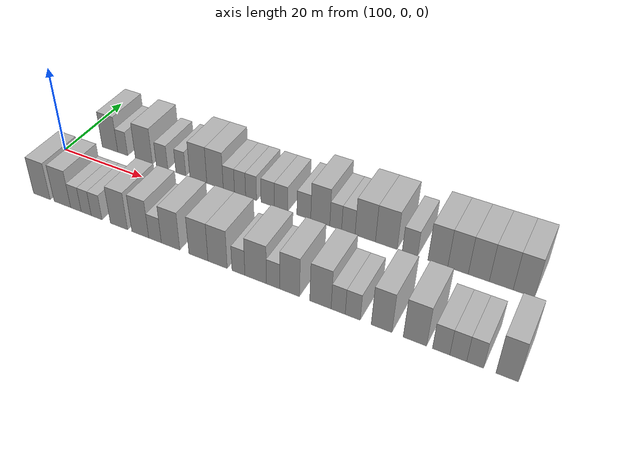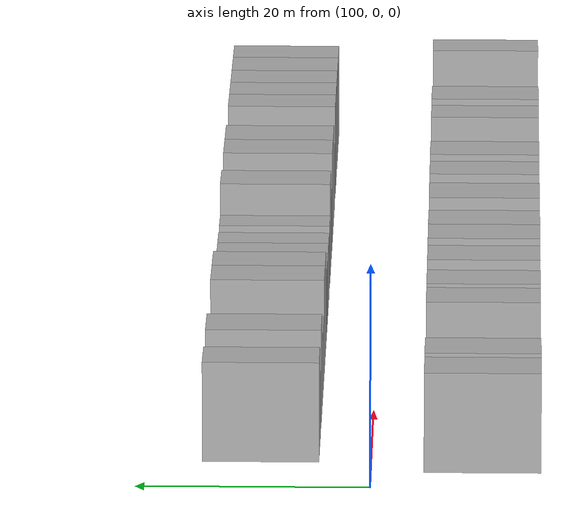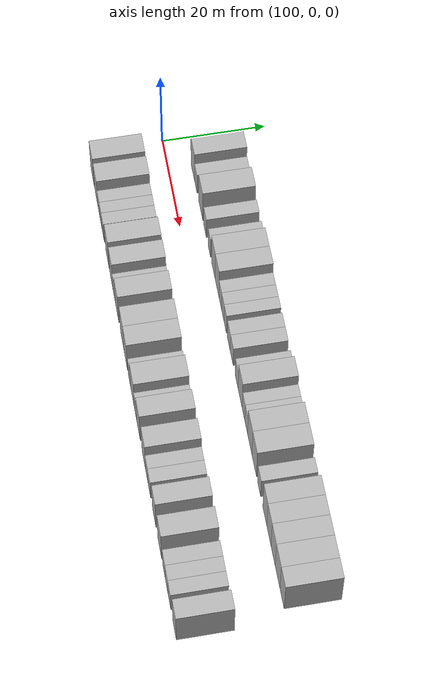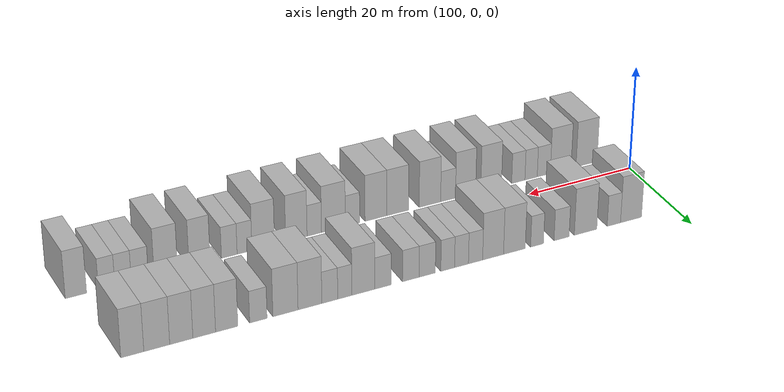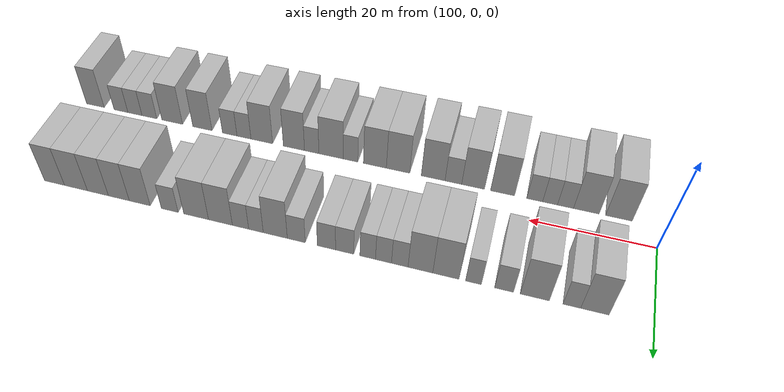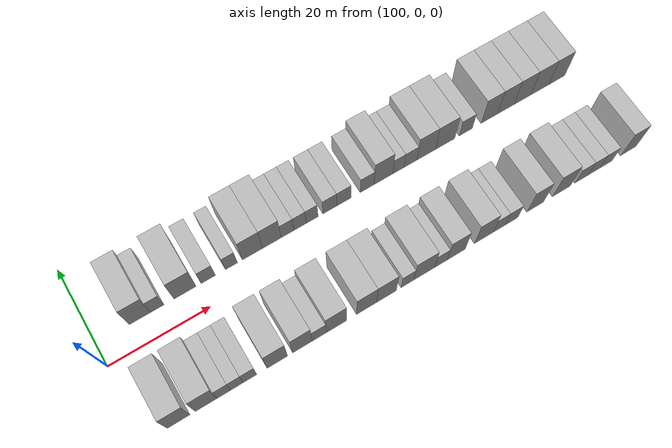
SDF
<sdf version="1.6">
 <world name="default">
  <model name="building_24">
   <static>1</static>
   <pose>108.4882 9.5000 0 0.000000 0.000000 1.570796</pose>
   <link name="link">
    <pose>0 0 4.50 0 0 0</pose>
    <collision name="collision"><geometry><box><size>10.0000 4.1000 9.0000</size></box></geometry></collision>
    <visual name="visual">
     <cast_shadows>0</cast_shadows>
     <geometry><box><size>10.0000 4.1000 9.0000</size></box></geometry>
     <material>
      <script>
       <uri>model://HANNAS_wall/materials/scripts</uri>
       <uri>model://HANNAS_wall/materials/textures</uri>
       <name>vrc/HANNAS_wall</name>
      </script>
     </material>
    </visual>
   </link>
  </model>
  <model name="building_25">
   <static>1</static>
   <pose>111.8313 9.5000 0 0.000000 0.000000 1.570796</pose>
   <link name="link">
    <pose>0 0 3.00 0 0 0</pose>
    <collision name="collision"><geometry><box><size>10.0000 2.5863 6.0000</size></box></geometry></collision>
    <visual name="visual">
     <cast_shadows>0</cast_shadows>
     <geometry><box><size>10.0000 2.5863 6.0000</size></box></geometry>
     <material>
      <script>
       <uri>model://HANNAS_wall/materials/scripts</uri>
       <uri>model://HANNAS_wall/materials/textures</uri>
       <name>vrc/HANNAS_wall</name>
      </script>
     </material>
    </visual>
   </link>
  </model>
  <model name="building_26">
   <static>1</static>
   <pose>117.2905 9.5000 0 0.000000 0.000000 1.570796</pose>
   <link name="link">
    <pose>0 0 4.50 0 0 0</pose>
    <collision name="collision"><geometry><box><size>10.0000 4.3321 9.0000</size></box></geometry></collision>
    <visual name="visual">
     <cast_shadows>0</cast_shadows>
     <geometry><box><size>10.0000 4.3321 9.0000</size></box></geometry>
     <material>
      <script>
       <uri>model://HANNAS_wall/materials/scripts</uri>
       <uri>model://HANNAS_wall/materials/textures</uri>
       <name>vrc/HANNAS_wall</name>
      </script>
     </material>
    </visual>
   </link>
  </model>
  <model name="building_27">
   <static>1</static>
   <pose>121.8870 9.5000 0 0.000000 0.000000 1.570796</pose>
   <link name="link">
    <pose>0 0 3.00 0 0 0</pose>
    <collision name="collision"><geometry><box><size>10.0000 2.8608 6.0000</size></box></geometry></collision>
    <visual name="visual">
     <cast_shadows>0</cast_shadows>
     <geometry><box><size>10.0000 2.8608 6.0000</size></box></geometry>
     <material>
      <script>
       <uri>model://HANNAS_wall/materials/scripts</uri>
       <uri>model://HANNAS_wall/materials/textures</uri>
       <name>vrc/HANNAS_wall</name>
      </script>
     </material>
    </visual>
   </link>
  </model>
  <model name="building_28">
   <static>1</static>
   <pose>126.5355 9.5000 0 0.000000 0.000000 1.570796</pose>
   <link name="link">
    <pose>0 0 3.00 0 0 0</pose>
    <collision name="collision"><geometry><box><size>10.0000 2.4363 6.0000</size></box></geometry></collision>
    <visual name="visual">
     <cast_shadows>0</cast_shadows>
     <geometry><box><size>10.0000 2.4363 6.0000</size></box></geometry>
     <material>
      <script>
       <uri>model://HANNAS_wall/materials/scripts</uri>
       <uri>model://HANNAS_wall/materials/textures</uri>
       <name>vrc/HANNAS_wall</name>
      </script>
     </material>
    </visual>
   </link>
  </model>
  <model name="building_29">
   <static>1</static>
   <pose>130.7886 9.5000 0 0.000000 0.000000 1.570796</pose>
   <link name="link">
    <pose>0 0 4.50 0 0 0</pose>
    <collision name="collision"><geometry><box><size>10.0000 4.0701 9.0000</size></box></geometry></collision>
    <visual name="visual">
     <cast_shadows>0</cast_shadows>
     <geometry><box><size>10.0000 4.0701 9.0000</size></box></geometry>
     <material>
      <script>
       <uri>model://HANNAS_wall/materials/scripts</uri>
       <uri>model://HANNAS_wall/materials/textures</uri>
       <name>vrc/HANNAS_wall</name>
      </script>
     </material>
    </visual>
   </link>
  </model>
  <model name="building_30">
   <static>1</static>
   <pose>134.7658 9.5000 0 0.000000 0.000000 1.570796</pose>
   <link name="link">
    <pose>0 0 4.50 0 0 0</pose>
    <collision name="collision"><geometry><box><size>10.0000 3.8842 9.0000</size></box></geometry></collision>
    <visual name="visual">
     <cast_shadows>0</cast_shadows>
     <geometry><box><size>10.0000 3.8842 9.0000</size></box></geometry>
     <material>
      <script>
       <uri>model://HANNAS_wall/materials/scripts</uri>
       <uri>model://HANNAS_wall/materials/textures</uri>
       <name>vrc/HANNAS_wall</name>
      </script>
     </material>
    </visual>
   </link>
  </model>
  <model name="building_31">
   <static>1</static>
   <pose>138.0191 9.5000 0 0.000000 0.000000 1.570796</pose>
   <link name="link">
    <pose>0 0 3.00 0 0 0</pose>
    <collision name="collision"><geometry><box><size>10.0000 2.6223 6.0000</size></box></geometry></collision>
    <visual name="visual">
     <cast_shadows>0</cast_shadows>
     <geometry><box><size>10.0000 2.6223 6.0000</size></box></geometry>
     <material>
      <script>
       <uri>model://HANNAS_wall/materials/scripts</uri>
       <uri>model://HANNAS_wall/materials/textures</uri>
       <name>vrc/HANNAS_wall</name>
      </script>
     </material>
    </visual>
   </link>
  </model>
  <model name="building_32">
   <static>1</static>
   <pose>140.6083 9.5000 0 0.000000 0.000000 1.570796</pose>
   <link name="link">
    <pose>0 0 3.00 0 0 0</pose>
    <collision name="collision"><geometry><box><size>10.0000 2.5561 6.0000</size></box></geometry></collision>
    <visual name="visual">
     <cast_shadows>0</cast_shadows>
     <geometry><box><size>10.0000 2.5561 6.0000</size></box></geometry>
     <material>
      <script>
       <uri>model://HANNAS_wall/materials/scripts</uri>
       <uri>model://HANNAS_wall/materials/textures</uri>
       <name>vrc/HANNAS_wall</name>
      </script>
     </material>
    </visual>
   </link>
  </model>
  <model name="building_33">
   <static>1</static>
   <pose>143.1384 9.5000 0 0.000000 0.000000 1.570796</pose>
   <link name="link">
    <pose>0 0 3.00 0 0 0</pose>
    <collision name="collision"><geometry><box><size>10.0000 2.5040 6.0000</size></box></geometry></collision>
    <visual name="visual">
     <cast_shadows>0</cast_shadows>
     <geometry><box><size>10.0000 2.5040 6.0000</size></box></geometry>
     <material>
      <script>
       <uri>model://HANNAS_wall/materials/scripts</uri>
       <uri>model://HANNAS_wall/materials/textures</uri>
       <name>vrc/HANNAS_wall</name>
      </script>
     </material>
    </visual>
   </link>
  </model>
  <model name="building_34">
   <static>1</static>
   <pose>146.8678 9.5000 0 0.000000 0.000000 1.570796</pose>
   <link name="link">
    <pose>0 0 3.00 0 0 0</pose>
    <collision name="collision"><geometry><box><size>10.0000 2.9549 6.0000</size></box></geometry></collision>
    <visual name="visual">
     <cast_shadows>0</cast_shadows>
     <geometry><box><size>10.0000 2.9549 6.0000</size></box></geometry>
     <material>
      <script>
       <uri>model://HANNAS_wall/materials/scripts</uri>
       <uri>model://HANNAS_wall/materials/textures</uri>
       <name>vrc/HANNAS_wall</name>
      </script>
     </material>
    </visual>
   </link>
  </model>
  <model name="building_35">
   <static>1</static>
   <pose>149.8399 9.5000 0 0.000000 0.000000 1.570796</pose>
   <link name="link">
    <pose>0 0 3.00 0 0 0</pose>
    <collision name="collision"><geometry><box><size>10.0000 2.9893 6.0000</size></box></geometry></collision>
    <visual name="visual">
     <cast_shadows>0</cast_shadows>
     <geometry><box><size>10.0000 2.9893 6.0000</size></box></geometry>
     <material>
      <script>
       <uri>model://HANNAS_wall/materials/scripts</uri>
       <uri>model://HANNAS_wall/materials/textures</uri>
       <name>vrc/HANNAS_wall</name>
      </script>
     </material>
    </visual>
   </link>
  </model>
  <model name="building_36">
   <static>1</static>
   <pose>154.8309 9.5000 0 0.000000 0.000000 1.570796</pose>
   <link name="link">
    <pose>0 0 3.00 0 0 0</pose>
    <collision name="collision"><geometry><box><size>10.0000 2.9926 6.0000</size></box></geometry></collision>
    <visual name="visual">
     <cast_shadows>0</cast_shadows>
     <geometry><box><size>10.0000 2.9926 6.0000</size></box></geometry>
     <material>
      <script>
       <uri>model://HANNAS_wall/materials/scripts</uri>
       <uri>model://HANNAS_wall/materials/textures</uri>
       <name>vrc/HANNAS_wall</name>
      </script>
     </material>
    </visual>
   </link>
  </model>
  <model name="building_37">
   <static>1</static>
   <pose>158.3484 9.5000 0 0.000000 0.000000 1.570796</pose>
   <link name="link">
    <pose>0 0 4.50 0 0 0</pose>
    <collision name="collision"><geometry><box><size>10.0000 4.0424 9.0000</size></box></geometry></collision>
    <visual name="visual">
     <cast_shadows>0</cast_shadows>
     <geometry><box><size>10.0000 4.0424 9.0000</size></box></geometry>
     <material>
      <script>
       <uri>model://HANNAS_wall/materials/scripts</uri>
       <uri>model://HANNAS_wall/materials/textures</uri>
       <name>vrc/HANNAS_wall</name>
      </script>
     </material>
    </visual>
   </link>
  </model>
  <model name="building_38">
   <static>1</static>
   <pose>161.6100 9.5000 0 0.000000 0.000000 1.570796</pose>
   <link name="link">
    <pose>0 0 3.00 0 0 0</pose>
    <collision name="collision"><geometry><box><size>10.0000 2.4809 6.0000</size></box></geometry></collision>
    <visual name="visual">
     <cast_shadows>0</cast_shadows>
     <geometry><box><size>10.0000 2.4809 6.0000</size></box></geometry>
     <material>
      <script>
       <uri>model://HANNAS_wall/materials/scripts</uri>
       <uri>model://HANNAS_wall/materials/textures</uri>
       <name>vrc/HANNAS_wall</name>
      </script>
     </material>
    </visual>
   </link>
  </model>
  <model name="building_39">
   <static>1</static>
   <pose>164.2413 9.5000 0 0.000000 0.000000 1.570796</pose>
   <link name="link">
    <pose>0 0 3.00 0 0 0</pose>
    <collision name="collision"><geometry><box><size>10.0000 2.7817 6.0000</size></box></geometry></collision>
    <visual name="visual">
     <cast_shadows>0</cast_shadows>
     <geometry><box><size>10.0000 2.7817 6.0000</size></box></geometry>
     <material>
      <script>
       <uri>model://HANNAS_wall/materials/scripts</uri>
       <uri>model://HANNAS_wall/materials/textures</uri>
       <name>vrc/HANNAS_wall</name>
      </script>
     </material>
    </visual>
   </link>
  </model>
  <model name="building_40">
   <static>1</static>
   <pose>167.7041 9.5000 0 0.000000 0.000000 1.570796</pose>
   <link name="link">
    <pose>0 0 4.50 0 0 0</pose>
    <collision name="collision"><geometry><box><size>10.0000 4.1439 9.0000</size></box></geometry></collision>
    <visual name="visual">
     <cast_shadows>0</cast_shadows>
     <geometry><box><size>10.0000 4.1439 9.0000</size></box></geometry>
     <material>
      <script>
       <uri>model://HANNAS_wall/materials/scripts</uri>
       <uri>model://HANNAS_wall/materials/textures</uri>
       <name>vrc/HANNAS_wall</name>
      </script>
     </material>
    </visual>
   </link>
  </model>
  <model name="building_41">
   <static>1</static>
   <pose>171.9448 9.5000 0 0.000000 0.000000 1.570796</pose>
   <link name="link">
    <pose>0 0 4.50 0 0 0</pose>
    <collision name="collision"><geometry><box><size>10.0000 4.3375 9.0000</size></box></geometry></collision>
    <visual name="visual">
     <cast_shadows>0</cast_shadows>
     <geometry><box><size>10.0000 4.3375 9.0000</size></box></geometry>
     <material>
      <script>
       <uri>model://HANNAS_wall/materials/scripts</uri>
       <uri>model://HANNAS_wall/materials/textures</uri>
       <name>vrc/HANNAS_wall</name>
      </script>
     </material>
    </visual>
   </link>
  </model>
  <model name="building_42">
   <static>1</static>
   <pose>176.6017 9.5000 0 0.000000 0.000000 1.570796</pose>
   <link name="link">
    <pose>0 0 3.00 0 0 0</pose>
    <collision name="collision"><geometry><box><size>10.0000 2.9762 6.0000</size></box></geometry></collision>
    <visual name="visual">
     <cast_shadows>0</cast_shadows>
     <geometry><box><size>10.0000 2.9762 6.0000</size></box></geometry>
     <material>
      <script>
       <uri>model://HANNAS_wall/materials/scripts</uri>
       <uri>model://HANNAS_wall/materials/textures</uri>
       <name>vrc/HANNAS_wall</name>
      </script>
     </material>
    </visual>
   </link>
  </model>
  <model name="building_43">
   <static>1</static>
   <pose>181.9762 9.5000 0 0.000000 0.000000 1.570796</pose>
   <link name="link">
    <pose>0 0 4.50 0 0 0</pose>
    <collision name="collision"><geometry><box><size>10.0000 3.7729 9.0000</size></box></geometry></collision>
    <visual name="visual">
     <cast_shadows>0</cast_shadows>
     <geometry><box><size>10.0000 3.7729 9.0000</size></box></geometry>
     <material>
      <script>
       <uri>model://HANNAS_wall/materials/scripts</uri>
       <uri>model://HANNAS_wall/materials/textures</uri>
       <name>vrc/HANNAS_wall</name>
      </script>
     </material>
    </visual>
   </link>
  </model>
  <model name="building_44">
   <static>1</static>
   <pose>185.7670 9.5000 0 0.000000 0.000000 1.570796</pose>
   <link name="link">
    <pose>0 0 4.50 0 0 0</pose>
    <collision name="collision"><geometry><box><size>10.0000 3.8088 9.0000</size></box></geometry></collision>
    <visual name="visual">
     <cast_shadows>0</cast_shadows>
     <geometry><box><size>10.0000 3.8088 9.0000</size></box></geometry>
     <material>
      <script>
       <uri>model://HANNAS_wall/materials/scripts</uri>
       <uri>model://HANNAS_wall/materials/textures</uri>
       <name>vrc/HANNAS_wall</name>
      </script>
     </material>
    </visual>
   </link>
  </model>
  <model name="building_45">
   <static>1</static>
   <pose>189.6012 9.5000 0 0.000000 0.000000 1.570796</pose>
   <link name="link">
    <pose>0 0 4.50 0 0 0</pose>
    <collision name="collision"><geometry><box><size>10.0000 3.8596 9.0000</size></box></geometry></collision>
    <visual name="visual">
     <cast_shadows>0</cast_shadows>
     <geometry><box><size>10.0000 3.8596 9.0000</size></box></geometry>
     <material>
      <script>
       <uri>model://HANNAS_wall/materials/scripts</uri>
       <uri>model://HANNAS_wall/materials/textures</uri>
       <name>vrc/HANNAS_wall</name>
      </script>
     </material>
    </visual>
   </link>
  </model>
  <model name="building_46">
   <static>1</static>
   <pose>193.6714 9.5000 0 0.000000 0.000000 1.570796</pose>
   <link name="link">
    <pose>0 0 4.50 0 0 0</pose>
    <collision name="collision"><geometry><box><size>10.0000 4.2807 9.0000</size></box></geometry></collision>
    <visual name="visual">
     <cast_shadows>0</cast_shadows>
     <geometry><box><size>10.0000 4.2807 9.0000</size></box></geometry>
     <material>
      <script>
       <uri>model://HANNAS_wall/materials/scripts</uri>
       <uri>model://HANNAS_wall/materials/textures</uri>
       <name>vrc/HANNAS_wall</name>
      </script>
     </material>
    </visual>
   </link>
  </model>
  <model name="building_47">
   <static>1</static>
   <pose>197.6972 9.5000 0 0.000000 0.000000 1.570796</pose>
   <link name="link">
    <pose>0 0 4.50 0 0 0</pose>
    <collision name="collision"><geometry><box><size>10.0000 3.7709 9.0000</size></box></geometry></collision>
    <visual name="visual">
     <cast_shadows>0</cast_shadows>
     <geometry><box><size>10.0000 3.7709 9.0000</size></box></geometry>
     <material>
      <script>
       <uri>model://HANNAS_wall/materials/scripts</uri>
       <uri>model://HANNAS_wall/materials/textures</uri>
       <name>vrc/HANNAS_wall</name>
      </script>
     </material>
    </visual>
   </link>
  </model>
  <model name="building_73">
   <static>1</static>
   <pose>106.0979 -9.5000 0 0.000000 0.000000 1.570796</pose>
   <link name="link">
    <pose>0 0 4.50 0 0 0</pose>
    <collision name="collision"><geometry><box><size>10.0000 4.2336 9.0000</size></box></geometry></collision>
    <visual name="visual">
     <cast_shadows>0</cast_shadows>
     <geometry><box><size>10.0000 4.2336 9.0000</size></box></geometry>
     <material>
      <script>
       <uri>model://HANNAS_wall/materials/scripts</uri>
       <uri>model://HANNAS_wall/materials/textures</uri>
       <name>vrc/HANNAS_wall</name>
      </script>
     </material>
    </visual>
   </link>
  </model>
  <model name="building_74">
   <static>1</static>
   <pose>111.2817 -9.5000 0 0.000000 0.000000 1.570796</pose>
   <link name="link">
    <pose>0 0 4.50 0 0 0</pose>
    <collision name="collision"><geometry><box><size>10.0000 4.1341 9.0000</size></box></geometry></collision>
    <visual name="visual">
     <cast_shadows>0</cast_shadows>
     <geometry><box><size>10.0000 4.1341 9.0000</size></box></geometry>
     <material>
      <script>
       <uri>model://HANNAS_wall/materials/scripts</uri>
       <uri>model://HANNAS_wall/materials/textures</uri>
       <name>vrc/HANNAS_wall</name>
      </script>
     </material>
    </visual>
   </link>
  </model>
  <model name="building_75">
   <static>1</static>
   <pose>114.6506 -9.5000 0 0.000000 0.000000 1.570796</pose>
   <link name="link">
    <pose>0 0 3.00 0 0 0</pose>
    <collision name="collision"><geometry><box><size>10.0000 2.6037 6.0000</size></box></geometry></collision>
    <visual name="visual">
     <cast_shadows>0</cast_shadows>
     <geometry><box><size>10.0000 2.6037 6.0000</size></box></geometry>
     <material>
      <script>
       <uri>model://HANNAS_wall/materials/scripts</uri>
       <uri>model://HANNAS_wall/materials/textures</uri>
       <name>vrc/HANNAS_wall</name>
      </script>
     </material>
    </visual>
   </link>
  </model>
  <model name="building_76">
   <static>1</static>
   <pose>117.1656 -9.5000 0 0.000000 0.000000 1.570796</pose>
   <link name="link">
    <pose>0 0 3.00 0 0 0</pose>
    <collision name="collision"><geometry><box><size>10.0000 2.4264 6.0000</size></box></geometry></collision>
    <visual name="visual">
     <cast_shadows>0</cast_shadows>
     <geometry><box><size>10.0000 2.4264 6.0000</size></box></geometry>
     <material>
      <script>
       <uri>model://HANNAS_wall/materials/scripts</uri>
       <uri>model://HANNAS_wall/materials/textures</uri>
       <name>vrc/HANNAS_wall</name>
      </script>
     </material>
    </visual>
   </link>
  </model>
  <model name="building_77">
   <static>1</static>
   <pose>119.6805 -9.5000 0 0.000000 0.000000 1.570796</pose>
   <link name="link">
    <pose>0 0 3.00 0 0 0</pose>
    <collision name="collision"><geometry><box><size>10.0000 2.6033 6.0000</size></box></geometry></collision>
    <visual name="visual">
     <cast_shadows>0</cast_shadows>
     <geometry><box><size>10.0000 2.6033 6.0000</size></box></geometry>
     <material>
      <script>
       <uri>model://HANNAS_wall/materials/scripts</uri>
       <uri>model://HANNAS_wall/materials/textures</uri>
       <name>vrc/HANNAS_wall</name>
      </script>
     </material>
    </visual>
   </link>
  </model>
  <model name="building_78">
   <static>1</static>
   <pose>124.9963 -9.5000 0 0.000000 0.000000 1.570796</pose>
   <link name="link">
    <pose>0 0 4.50 0 0 0</pose>
    <collision name="collision"><geometry><box><size>10.0000 4.0285 9.0000</size></box></geometry></collision>
    <visual name="visual">
     <cast_shadows>0</cast_shadows>
     <geometry><box><size>10.0000 4.0285 9.0000</size></box></geometry>
     <material>
      <script>
       <uri>model://HANNAS_wall/materials/scripts</uri>
       <uri>model://HANNAS_wall/materials/textures</uri>
       <name>vrc/HANNAS_wall</name>
      </script>
     </material>
    </visual>
   </link>
  </model>
  <model name="building_79">
   <static>1</static>
   <pose>129.9470 -9.5000 0 0.000000 0.000000 1.570796</pose>
   <link name="link">
    <pose>0 0 4.50 0 0 0</pose>
    <collision name="collision"><geometry><box><size>10.0000 3.8728 9.0000</size></box></geometry></collision>
    <visual name="visual">
     <cast_shadows>0</cast_shadows>
     <geometry><box><size>10.0000 3.8728 9.0000</size></box></geometry>
     <material>
      <script>
       <uri>model://HANNAS_wall/materials/scripts</uri>
       <uri>model://HANNAS_wall/materials/textures</uri>
       <name>vrc/HANNAS_wall</name>
      </script>
     </material>
    </visual>
   </link>
  </model>
  <model name="building_80">
   <static>1</static>
   <pose>133.3084 -9.5000 0 0.000000 0.000000 1.570796</pose>
   <link name="link">
    <pose>0 0 3.00 0 0 0</pose>
    <collision name="collision"><geometry><box><size>10.0000 2.8500 6.0000</size></box></geometry></collision>
    <visual name="visual">
     <cast_shadows>0</cast_shadows>
     <geometry><box><size>10.0000 2.8500 6.0000</size></box></geometry>
     <material>
      <script>
       <uri>model://HANNAS_wall/materials/scripts</uri>
       <uri>model://HANNAS_wall/materials/textures</uri>
       <name>vrc/HANNAS_wall</name>
      </script>
     </material>
    </visual>
   </link>
  </model>
  <model name="building_81">
   <static>1</static>
   <pose>136.7804 -9.5000 0 0.000000 0.000000 1.570796</pose>
   <link name="link">
    <pose>0 0 4.50 0 0 0</pose>
    <collision name="collision"><geometry><box><size>10.0000 4.0941 9.0000</size></box></geometry></collision>
    <visual name="visual">
     <cast_shadows>0</cast_shadows>
     <geometry><box><size>10.0000 4.0941 9.0000</size></box></geometry>
     <material>
      <script>
       <uri>model://HANNAS_wall/materials/scripts</uri>
       <uri>model://HANNAS_wall/materials/textures</uri>
       <name>vrc/HANNAS_wall</name>
      </script>
     </material>
    </visual>
   </link>
  </model>
  <model name="building_82">
   <static>1</static>
   <pose>142.8834 -9.5000 0 0.000000 0.000000 1.570796</pose>
   <link name="link">
    <pose>0 0 4.50 0 0 0</pose>
    <collision name="collision"><geometry><box><size>10.0000 4.1120 9.0000</size></box></geometry></collision>
    <visual name="visual">
     <cast_shadows>0</cast_shadows>
     <geometry><box><size>10.0000 4.1120 9.0000</size></box></geometry>
     <material>
      <script>
       <uri>model://HANNAS_wall/materials/scripts</uri>
       <uri>model://HANNAS_wall/materials/textures</uri>
       <name>vrc/HANNAS_wall</name>
      </script>
     </material>
    </visual>
   </link>
  </model>
  <model name="building_83">
   <static>1</static>
   <pose>146.9704 -9.5000 0 0.000000 0.000000 1.570796</pose>
   <link name="link">
    <pose>0 0 4.50 0 0 0</pose>
    <collision name="collision"><geometry><box><size>10.0000 4.0620 9.0000</size></box></geometry></collision>
    <visual name="visual">
     <cast_shadows>0</cast_shadows>
     <geometry><box><size>10.0000 4.0620 9.0000</size></box></geometry>
     <material>
      <script>
       <uri>model://HANNAS_wall/materials/scripts</uri>
       <uri>model://HANNAS_wall/materials/textures</uri>
       <name>vrc/HANNAS_wall</name>
      </script>
     </material>
    </visual>
   </link>
  </model>
  <model name="building_84">
   <static>1</static>
   <pose>151.3286 -9.5000 0 0.000000 0.000000 1.570796</pose>
   <link name="link">
    <pose>0 0 3.00 0 0 0</pose>
    <collision name="collision"><geometry><box><size>10.0000 2.6544 6.0000</size></box></geometry></collision>
    <visual name="visual">
     <cast_shadows>0</cast_shadows>
     <geometry><box><size>10.0000 2.6544 6.0000</size></box></geometry>
     <material>
      <script>
       <uri>model://HANNAS_wall/materials/scripts</uri>
       <uri>model://HANNAS_wall/materials/textures</uri>
       <name>vrc/HANNAS_wall</name>
      </script>
     </material>
    </visual>
   </link>
  </model>
  <model name="building_85">
   <static>1</static>
   <pose>154.8451 -9.5000 0 0.000000 0.000000 1.570796</pose>
   <link name="link">
    <pose>0 0 4.50 0 0 0</pose>
    <collision name="collision"><geometry><box><size>10.0000 4.3784 9.0000</size></box></geometry></collision>
    <visual name="visual">
     <cast_shadows>0</cast_shadows>
     <geometry><box><size>10.0000 4.3784 9.0000</size></box></geometry>
     <material>
      <script>
       <uri>model://HANNAS_wall/materials/scripts</uri>
       <uri>model://HANNAS_wall/materials/textures</uri>
       <name>vrc/HANNAS_wall</name>
      </script>
     </material>
    </visual>
   </link>
  </model>
  <model name="building_86">
   <static>1</static>
   <pose>158.3518 -9.5000 0 0.000000 0.000000 1.570796</pose>
   <link name="link">
    <pose>0 0 3.00 0 0 0</pose>
    <collision name="collision"><geometry><box><size>10.0000 2.6350 6.0000</size></box></geometry></collision>
    <visual name="visual">
     <cast_shadows>0</cast_shadows>
     <geometry><box><size>10.0000 2.6350 6.0000</size></box></geometry>
     <material>
      <script>
       <uri>model://HANNAS_wall/materials/scripts</uri>
       <uri>model://HANNAS_wall/materials/textures</uri>
       <name>vrc/HANNAS_wall</name>
      </script>
     </material>
    </visual>
   </link>
  </model>
  <model name="building_87">
   <static>1</static>
   <pose>161.6151 -9.5000 0 0.000000 0.000000 1.570796</pose>
   <link name="link">
    <pose>0 0 4.50 0 0 0</pose>
    <collision name="collision"><geometry><box><size>10.0000 3.8917 9.0000</size></box></geometry></collision>
    <visual name="visual">
     <cast_shadows>0</cast_shadows>
     <geometry><box><size>10.0000 3.8917 9.0000</size></box></geometry>
     <material>
      <script>
       <uri>model://HANNAS_wall/materials/scripts</uri>
       <uri>model://HANNAS_wall/materials/textures</uri>
       <name>vrc/HANNAS_wall</name>
      </script>
     </material>
    </visual>
   </link>
  </model>
  <model name="building_88">
   <static>1</static>
   <pose>167.5894 -9.5000 0 0.000000 0.000000 1.570796</pose>
   <link name="link">
    <pose>0 0 4.50 0 0 0</pose>
    <collision name="collision"><geometry><box><size>10.0000 4.0569 9.0000</size></box></geometry></collision>
    <visual name="visual">
     <cast_shadows>0</cast_shadows>
     <geometry><box><size>10.0000 4.0569 9.0000</size></box></geometry>
     <material>
      <script>
       <uri>model://HANNAS_wall/materials/scripts</uri>
       <uri>model://HANNAS_wall/materials/textures</uri>
       <name>vrc/HANNAS_wall</name>
      </script>
     </material>
    </visual>
   </link>
  </model>
  <model name="building_89">
   <static>1</static>
   <pose>170.9412 -9.5000 0 0.000000 0.000000 1.570796</pose>
   <link name="link">
    <pose>0 0 3.00 0 0 0</pose>
    <collision name="collision"><geometry><box><size>10.0000 2.6467 6.0000</size></box></geometry></collision>
    <visual name="visual">
     <cast_shadows>0</cast_shadows>
     <geometry><box><size>10.0000 2.6467 6.0000</size></box></geometry>
     <material>
      <script>
       <uri>model://HANNAS_wall/materials/scripts</uri>
       <uri>model://HANNAS_wall/materials/textures</uri>
       <name>vrc/HANNAS_wall</name>
      </script>
     </material>
    </visual>
   </link>
  </model>
  <model name="building_90">
   <static>1</static>
   <pose>173.6525 -9.5000 0 0.000000 0.000000 1.570796</pose>
   <link name="link">
    <pose>0 0 3.00 0 0 0</pose>
    <collision name="collision"><geometry><box><size>10.0000 2.7757 6.0000</size></box></geometry></collision>
    <visual name="visual">
     <cast_shadows>0</cast_shadows>
     <geometry><box><size>10.0000 2.7757 6.0000</size></box></geometry>
     <material>
      <script>
       <uri>model://HANNAS_wall/materials/scripts</uri>
       <uri>model://HANNAS_wall/materials/textures</uri>
       <name>vrc/HANNAS_wall</name>
      </script>
     </material>
    </visual>
   </link>
  </model>
  <model name="building_91">
   <static>1</static>
   <pose>178.8961 -9.5000 0 0.000000 0.000000 1.570796</pose>
   <link name="link">
    <pose>0 0 4.50 0 0 0</pose>
    <collision name="collision"><geometry><box><size>10.0000 3.7115 9.0000</size></box></geometry></collision>
    <visual name="visual">
     <cast_shadows>0</cast_shadows>
     <geometry><box><size>10.0000 3.7115 9.0000</size></box></geometry>
     <material>
      <script>
       <uri>model://HANNAS_wall/materials/scripts</uri>
       <uri>model://HANNAS_wall/materials/textures</uri>
       <name>vrc/HANNAS_wall</name>
      </script>
     </material>
    </visual>
   </link>
  </model>
  <model name="building_92">
   <static>1</static>
   <pose>184.7876 -9.5000 0 0.000000 0.000000 1.570796</pose>
   <link name="link">
    <pose>0 0 4.50 0 0 0</pose>
    <collision name="collision"><geometry><box><size>10.0000 4.0714 9.0000</size></box></geometry></collision>
    <visual name="visual">
     <cast_shadows>0</cast_shadows>
     <geometry><box><size>10.0000 4.0714 9.0000</size></box></geometry>
     <material>
      <script>
       <uri>model://HANNAS_wall/materials/scripts</uri>
       <uri>model://HANNAS_wall/materials/textures</uri>
       <name>vrc/HANNAS_wall</name>
      </script>
     </material>
    </visual>
   </link>
  </model>
  <model name="building_93">
   <static>1</static>
   <pose>189.2909 -9.5000 0 0.000000 0.000000 1.570796</pose>
   <link name="link">
    <pose>0 0 3.00 0 0 0</pose>
    <collision name="collision"><geometry><box><size>10.0000 2.9352 6.0000</size></box></geometry></collision>
    <visual name="visual">
     <cast_shadows>0</cast_shadows>
     <geometry><box><size>10.0000 2.9352 6.0000</size></box></geometry>
     <material>
      <script>
       <uri>model://HANNAS_wall/materials/scripts</uri>
       <uri>model://HANNAS_wall/materials/textures</uri>
       <name>vrc/HANNAS_wall</name>
      </script>
     </material>
    </visual>
   </link>
  </model>
  <model name="building_94">
   <static>1</static>
   <pose>192.1687 -9.5000 0 0.000000 0.000000 1.570796</pose>
   <link name="link">
    <pose>0 0 3.00 0 0 0</pose>
    <collision name="collision"><geometry><box><size>10.0000 2.8205 6.0000</size></box></geometry></collision>
    <visual name="visual">
     <cast_shadows>0</cast_shadows>
     <geometry><box><size>10.0000 2.8205 6.0000</size></box></geometry>
     <material>
      <script>
       <uri>model://HANNAS_wall/materials/scripts</uri>
       <uri>model://HANNAS_wall/materials/textures</uri>
       <name>vrc/HANNAS_wall</name>
      </script>
     </material>
    </visual>
   </link>
  </model>
  <model name="building_95">
   <static>1</static>
   <pose>194.9722 -9.5000 0 0.000000 0.000000 1.570796</pose>
   <link name="link">
    <pose>0 0 3.00 0 0 0</pose>
    <collision name="collision"><geometry><box><size>10.0000 2.7865 6.0000</size></box></geometry></collision>
    <visual name="visual">
     <cast_shadows>0</cast_shadows>
     <geometry><box><size>10.0000 2.7865 6.0000</size></box></geometry>
     <material>
      <script>
       <uri>model://HANNAS_wall/materials/scripts</uri>
       <uri>model://HANNAS_wall/materials/textures</uri>
       <name>vrc/HANNAS_wall</name>
      </script>
     </material>
    </visual>
   </link>
  </model>
  <model name="building_96">
   <static>1</static>
   <pose>200.1672 -9.5000 0 0.000000 0.000000 1.570796</pose>
   <link name="link">
    <pose>0 0 4.50 0 0 0</pose>
    <collision name="collision"><geometry><box><size>10.0000 3.6034 9.0000</size></box></geometry></collision>
    <visual name="visual">
     <cast_shadows>0</cast_shadows>
     <geometry><box><size>10.0000 3.6034 9.0000</size></box></geometry>
     <material>
      <script>
       <uri>model://HANNAS_wall/materials/scripts</uri>
       <uri>model://HANNAS_wall/materials/textures</uri>
       <name>vrc/HANNAS_wall</name>
      </script>
     </material>
    </visual>
   </link>
  </model>
 </world>
</sdf>
